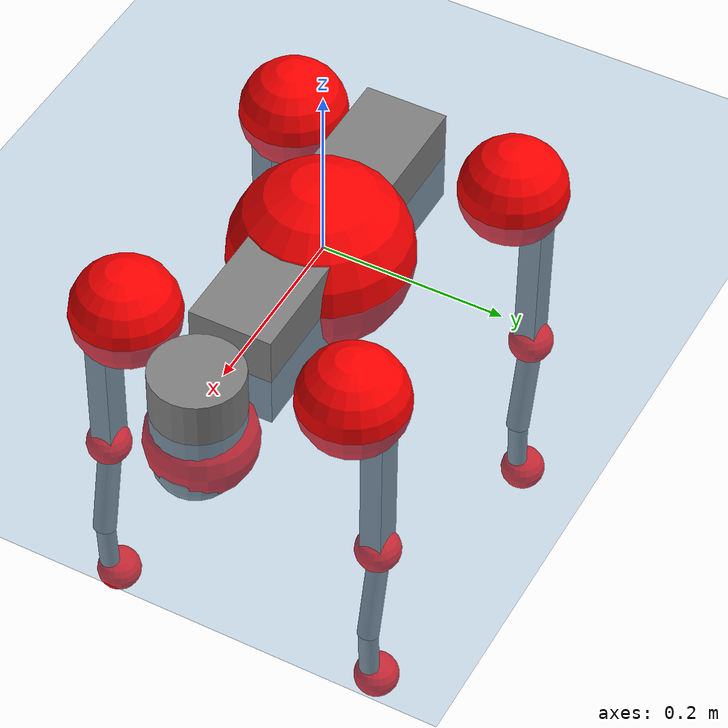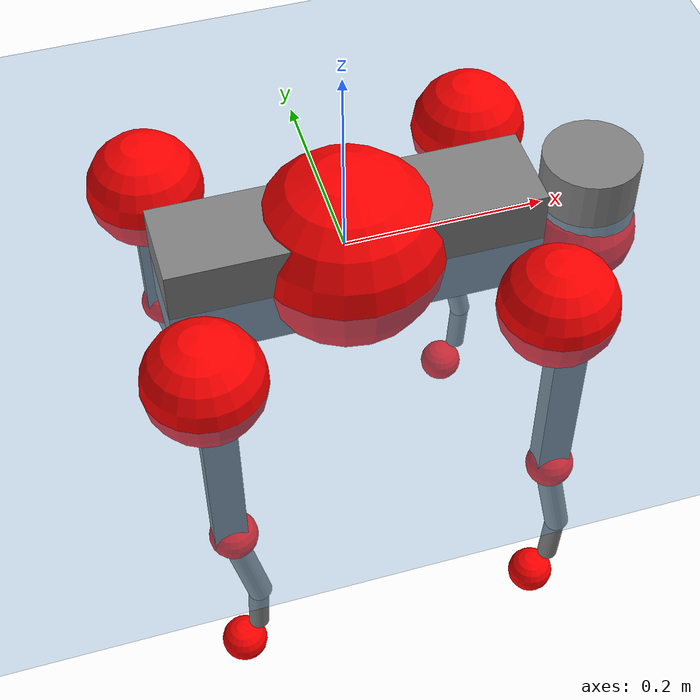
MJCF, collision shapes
<mujoco model="go2">
  <compiler angle="radian" assetdir="assets" balanceinertia="true" inertiafromgeom="false"/>

  <option timestep="0.005" density="1.2" viscosity="2e-05"/>

  <size nkey="1"/>

  <visual>
    <quality shadowsize="8192"/>
    <map shadowclip="0.5"/>
  </visual>

  <default>
    <default class="/">
      <geom contype="0" conaffinity="0" group="1" solref="-1000 -80"/>
      <site size="0.01 0.005 0.005" group="5"/>
      <general forcelimited="true" biastype="affine" gainprm="20" biasprm="0 -20 -0.5"/>
      <default class="go2">
        <joint armature="0.01" damping="0.01" frictionloss="0.2"/>
        <geom condim="1" margin="0.001"/>
        <default class="visual">
          <geom type="mesh" group="2"/>
        </default>
        <default class="collision">
          <geom group="3"/>
          <default class="foot">
            <geom size="0.022 0 0" condim="6" priority="1" friction="0.8 0.02 0.01" solimp="0.015 1 0.022"/>
          </default>
        </default>
        <default class="reward_collision_sphere">
          <geom group="5" rgba="1 0 0 1"/>
        </default>
      </default>
    </default>
  </default>

  <asset>
    <texture type="skybox" colorspace="auto" name="//unnamed_texture_0" builtin="gradient" rgb1="0.95 0.95 0.95" rgb2="0.95 0.95 0.95" width="100" height="600"/>
    <texture type="2d" colorspace="auto" name="texplane" builtin="checker" rgb1="0.345 0.575 0.748" rgb2="0.345 0.575 0.748" markrgb="1 1 1" width="512" height="512"/>
    <material name="MatPlane" class="/" texture="texplane" texuniform="true" texrepeat="2 2" specular="0.9"/>
    <material name="metal" class="/" rgba="0.9 0.95 0.95 1"/>
    <material name="black" class="/" rgba="0 0 0 1"/>
    <material name="white" class="/"/>
    <material name="gray" class="/" rgba="0.671705 0.692426 0.77427 1"/>
    <mesh name="base_0" class="/" file="base_0.obj"/>
    <mesh name="base_1" class="/" file="base_1.obj"/>
    <mesh name="base_2" class="/" file="base_2.obj"/>
    <mesh name="base_3" class="/" file="base_3.obj"/>
    <mesh name="base_4" class="/" file="base_4.obj"/>
    <mesh name="hip_0" class="/" file="hip_0.obj"/>
    <mesh name="hip_1" class="/" file="hip_1.obj"/>
    <mesh name="thigh_0" class="/" file="thigh_0.obj"/>
    <mesh name="thigh_1" class="/" file="thigh_1.obj"/>
    <mesh name="thigh_mirror_0" class="/" file="thigh_mirror_0.obj"/>
    <mesh name="thigh_mirror_1" class="/" file="thigh_mirror_1.obj"/>
    <mesh name="calf_0" class="/" file="calf_0.obj"/>
    <mesh name="calf_1" class="/" file="calf_1.obj"/>
    <mesh name="calf_mirror_0" class="/" file="calf_mirror_0.obj"/>
    <mesh name="calf_mirror_1" class="/" file="calf_mirror_1.obj"/>
    <mesh name="foot" class="/" file="foot.obj"/>
  </asset>

  <worldbody>
    <geom name="floor" class="/" size="100 100 0.125" type="plane" group="0" material="MatPlane"/>
    <light name="toplight_shadow" class="/" pos="0 0 5" dir="0.0990148 0.0990148 -0.990148" type="directional" ambient="0.04 0.04 0.04" diffuse="0.55 0.55 0.55" specular="0.12 0.12 0.12"/>
    <light name="toplight_fill" class="/" pos="0 0 5" dir="0.0990148 0.0990148 -0.990148" type="directional" castshadow="false" ambient="0.04 0.04 0.04" diffuse="0.3 0.3 0.3" specular="0.08 0.08 0.08"/>
    <body name="trunk" childclass="go2" pos="0.00246858 -0.000795923 -0.00258818" quat="1 -4.39833e-05 0.000156606 -1.61669e-05">
      <inertial pos="0.0212165 -0.000343427 -0.00470625" quat="-0.00783734 0.720657 -0.00461183 0.693232" mass="6.67432" diaginertia="0.0494214 0.155856 0.0207265"/>
      <joint name="//unnamed_joint_0" type="free" armature="0" damping="0" frictionloss="0"/>
      <geom name="//unnamed_geom_1" class="visual" material="black" mesh="base_0"/>
      <geom name="//unnamed_geom_2" class="visual" material="black" mesh="base_1"/>
      <geom name="//unnamed_geom_3" class="visual" material="black" mesh="base_2"/>
      <geom name="//unnamed_geom_4" class="visual" material="white" mesh="base_3"/>
      <geom name="//unnamed_geom_5" class="visual" material="gray" mesh="base_4"/>
      <geom name="trunk_1" class="collision" size="0.183235 0.0455409 0.0555258" type="box"/>
      <geom name="trunk_2" class="collision" size="0.0487068 0.0438361" pos="0.245266 0 0.00968336" type="cylinder"/>
      <geom name="trunk_3" class="collision" size="0.0457844" pos="0.25215 0 -0.0581002"/>
      <geom name="//unnamed_geom_9" class="reward_collision_sphere" size="0.0974136"/>
      <geom name="//unnamed_geom_10" class="reward_collision_sphere" size="0.0584482" pos="0.240963 0 -0.0435751"/>
      <site name="imu" pos="-0.0253876 0.0131552 0.0282827" size="0.00974136"/>
      <camera name="track" pos="0 -2.18698 0" quat="0.707107 0.707107 0 0" mode="trackcom"/>
      <camera name="ego_camera" pos="0.268502 0 0.0435751" quat="-0.5 -0.5 0.5 0.5"/>
      <body name="FL_hip" pos="0.165107 0.0493066 0.0021184" quat="0.999999 0.000485607 0.000246012 0.00107614">
        <inertial pos="-0.00143362 0.000201619 -0.0021527" quat="0.497335 0.498833 0.505702 0.498086" mass="0.607959" diaginertia="0.000402813 0.000941276 0.000412818"/>
        <joint name="FL_hip_joint" pos="0 0 0" axis="0.999957 0.00730119 -0.00574893" range="-1.05136 1.06813" armature="0.00983665" damping="0.00493159" frictionloss="0.219362"/>
        <geom name="//unnamed_geom_11" class="visual" material="metal" mesh="hip_0"/>
        <geom name="//unnamed_geom_12" class="visual" material="gray" mesh="hip_1"/>
        <geom name="//unnamed_geom_13" class="collision" size="0.0448103 0.0194827" pos="0 0.0874793 0" quat="0.707107 0.707107 0 0" type="cylinder"/>
        <geom name="//unnamed_geom_14" class="reward_collision_sphere" size="0.0584482" pos="0 0.0765444 0"/>
        <body name="FL_thigh" pos="0.000183208 0.105177 0.00250388" quat="1 -0.000146319 0.000120557 -7.26435e-05">
          <inertial pos="-0.0056674 -0.0234877 -0.0330777" quat="0.829931 0.0854021 -0.0199735 0.550928" mass="1.02289" diaginertia="0.00276121 0.00933539 0.00071734"/>
          <joint name="FL_thigh_joint" pos="0 0 0" axis="0.0048538 0.999986 0.00227036" range="-1.56207 3.49218" armature="0.00979885" damping="0.0184291" frictionloss="0.216332"/>
          <geom name="//unnamed_geom_15" class="visual" material="metal" mesh="thigh_0"/>
          <geom name="//unnamed_geom_16" class="visual" material="gray" mesh="thigh_1"/>
          <geom name="//unnamed_geom_17" class="collision" size="0.103746 0.0119332 0.0165603" pos="0 0 -0.103128" quat="0.707107 0 0.707107 0" type="box"/>
          <body name="FL_calf" pos="0.000418842 0.00101806 -0.207248" quat="1 -0.000416147 0.000436582 0.000271269">
            <inertial pos="0.00701597 0.00140995 -0.137269" quat="0.711805 0.00693875 -0.00674704 0.702311" mass="0.229527" diaginertia="0.000677964 0.00234211 4.44696e-05"/>
            <joint name="FL_calf_joint" pos="0 0 0" axis="-0.000693731 1 -0.000661932" range="-2.74463 -0.824789" armature="0.0087075" damping="0" frictionloss="0.181164"/>
            <geom name="//unnamed_geom_18" class="visual" material="gray" mesh="calf_0"/>
            <geom name="//unnamed_geom_19" class="visual" material="black" mesh="calf_1"/>
            <geom name="FL_calf0" class="collision" size="0.0116896 0.0584482" pos="0.00688466 0 -0.0581002" quat="0.994493 0 -0.104807 0" type="cylinder"/>
            <geom name="//unnamed_geom_21" class="collision" size="0.0107155 0.0316594" pos="0.0172116 0 -0.143314" quat="0.999688 0 0.0249974 0" type="cylinder"/>
            <geom name="//unnamed_geom_22" class="visual" pos="0 0 -0.206256" quat="1 0 0 0" material="black" mesh="foot"/>
            <geom name="FL_foot" class="foot" size="0.0238858" pos="-0.00172116 0 -0.206256"/>
            <geom name="//unnamed_geom_24" class="reward_collision_sphere" size="0.0243534"/>
            <geom name="//unnamed_geom_25" class="reward_collision_sphere" size="0.0243534" pos="-0.00172116 0 -0.206256"/>
            <site name="FL_foot" class="foot" pos="-0.00172116 0 -0.206256" size="0.00974136"/>
          </body>
        </body>
      </body>
      <body name="FR_hip" pos="0.16574 -0.0522426 -0.000445078" quat="0.999999 0.0009057 0.000896771 -0.000310432">
        <inertial pos="-0.00488289 0.000481478 -6.82727e-05" quat="0.497885 0.50568 0.500249 0.496134" mass="0.599597" diaginertia="0.000413193 0.000915293 0.000405967"/>
        <joint name="FR_hip_joint" pos="0 0 0" axis="0.999996 -0.00102402 0.00254681" stiffness="0.0100432" range="-1.01302 1.04289" armature="0.0111013" damping="0.00165016" frictionloss="0.169139"/>
        <geom name="//unnamed_geom_26" class="visual" pos="0 1.0903e-09 4.67653e-08" quat="4.63268e-05 1 0 0" material="metal" mesh="hip_0"/>
        <geom name="//unnamed_geom_27" class="visual" pos="0 1.76751e-09 -1.15668e-07" quat="4.63268e-05 1 0 0" material="gray" mesh="hip_1"/>
        <geom name="//unnamed_geom_28" class="collision" size="0.0448103 0.0194827" pos="0 -0.0874793 0" quat="0.707107 0.707107 0 0" type="cylinder"/>
        <geom name="//unnamed_geom_29" class="reward_collision_sphere" size="0.0584482" pos="0 -0.0765444 0"/>
        <body name="FR_thigh" pos="-0.000130581 -0.107057 -0.00156519" quat="1 -0.000232884 1.54464e-05 -0.000895032">
          <inertial pos="-0.00376195 0.027496 -0.0341846" quat="0.549699 -0.0256795 0.0813114 0.831" mass="1.07341" diaginertia="0.0026878 0.00856071 0.00072581"/>
          <joint name="FR_thigh_joint" pos="0 0 0" axis="0.0125121 -0.99989 0.00793903" range="-3.54336 1.51607" armature="0.00973966" damping="0.00163923" frictionloss="0.219306"/>
          <geom name="//unnamed_geom_30" class="visual" material="metal" mesh="thigh_mirror_0"/>
          <geom name="//unnamed_geom_31" class="visual" material="gray" mesh="thigh_mirror_1"/>
          <geom name="//unnamed_geom_32" class="collision" size="0.103746 0.0119332 0.0165603" pos="0 0 -0.103128" quat="0.707107 0 0.707107 0" type="box"/>
          <body name="FR_calf" pos="0.0012418 -0.000184826 -0.207045" quat="1 4.30614e-05 -0.000291164 3.75163e-05">
            <inertial pos="0.00743659 0.000439246 -0.13969" quat="0.705732 -0.00694506 -0.00440241 0.708431" mass="0.228733" diaginertia="0.000691777 0.00225761 4.47924e-05"/>
            <joint name="FR_calf_joint" pos="0 0 0" axis="0.00415427 -0.999976 0.00558734" range="0.837648 2.71261" armature="0.00977552" damping="0.0175541" frictionloss="0.218516"/>
            <geom name="//unnamed_geom_33" class="visual" material="gray" mesh="calf_mirror_0"/>
            <geom name="//unnamed_geom_34" class="visual" material="black" mesh="calf_mirror_1"/>
            <geom name="FR_calf0" class="collision" size="0.0126638 0.0584482" pos="0.00860582 0 -0.0581002" quat="0.995004 0 -0.0998334 0" type="cylinder"/>
            <geom name="//unnamed_geom_36" class="collision" size="0.0107155 0.0316594" pos="0.0172116 0 -0.143314" quat="0.999688 0 0.0249974 0" type="cylinder"/>
            <geom name="//unnamed_geom_37" class="visual" pos="0 0 -0.206256" quat="1 0 0 0" material="black" mesh="foot"/>
            <geom name="FR_foot" class="foot" size="0.0234647" pos="-0.00172116 0 -0.206256"/>
            <geom name="//unnamed_geom_39" class="reward_collision_sphere" size="0.0243534"/>
            <geom name="//unnamed_geom_40" class="reward_collision_sphere" size="0.0243534" pos="-0.00172116 0 -0.206256"/>
            <site name="FR_foot" class="foot" pos="-0.00172116 0 -0.206256" size="0.00974136"/>
          </body>
        </body>
      </body>
      <body name="RL_hip" pos="-0.16977 0.0547117 0.00195461" quat="0.999998 -0.00107619 0.00171013 -0.00016437">
        <inertial pos="0.00247665 0.000949439 0.00123433" quat="0.506181 0.497195 0.497368 0.499202" mass="0.642991" diaginertia="0.000414775 0.000934854 0.000394895"/>
        <joint name="RL_hip_joint" pos="0 0 0" axis="-0.999767 -0.00265202 0.0214111" stiffness="0.00333842" range="-1.08973 1.06679" armature="0.00976664" damping="0.011446" frictionloss="0.220083"/>
        <geom name="//unnamed_geom_41" class="visual" pos="9.38708e-10 0 1.84008e-07" quat="4.63268e-05 0 1 0" material="metal" mesh="hip_0"/>
        <geom name="//unnamed_geom_42" class="visual" pos="1.52176e-09 0 1.63189e-07" quat="4.63268e-05 0 1 0" material="gray" mesh="hip_1"/>
        <geom name="//unnamed_geom_43" class="collision" size="0.0448103 0.0194827" pos="0 0.0874793 0" quat="0.707107 0.707107 0 0" type="cylinder"/>
        <geom name="//unnamed_geom_44" class="reward_collision_sphere" size="0.0584482" pos="0 0.0765444 0"/>
        <body name="RL_thigh" pos="0.00230794 0.107203 0.00055939" quat="0.999999 -0.000935506 -0.000515295 0.000360568">
          <inertial pos="-0.00215451 -0.0259082 -0.033583" quat="0.83058 0.0795974 -0.0182249 0.550881" mass="1.07577" diaginertia="0.00290471 0.00915422 0.000774495"/>
          <joint name="RL_thigh_joint" pos="0 0 0" axis="-0.00159326 0.999992 0.00353358" stiffness="0.00404495" range="-0.549002 4.54098" armature="0.00926802" damping="0.02" frictionloss="0.169205"/>
          <geom name="//unnamed_geom_45" class="visual" material="metal" mesh="thigh_0"/>
          <geom name="//unnamed_geom_46" class="visual" material="gray" mesh="thigh_1"/>
          <geom name="//unnamed_geom_47" class="collision" size="0.103746 0.0119332 0.0165603" pos="0 0 -0.103128" quat="0.707107 0 0.707107 0" type="box"/>
          <body name="RL_calf" pos="0.00183642 0.00225416 -0.203297" quat="1 0.000304948 0.00015308 5.49138e-05">
            <inertial pos="0.00548898 -0.000635373 -0.135207" quat="0.711045 0.00199999 -0.00391884 0.703133" mass="0.223292" diaginertia="0.000701232 0.00225115 4.48286e-05"/>
            <joint name="RL_calf_joint" pos="0 0 0" axis="-0.000756105 0.999999 0.00140468" stiffness="0.00194074" range="-2.77463 -0.836106" armature="0.00869276" damping="0.0184804" frictionloss="0.20211"/>
            <geom name="//unnamed_geom_48" class="visual" material="gray" mesh="calf_0"/>
            <geom name="//unnamed_geom_49" class="visual" material="black" mesh="calf_1"/>
            <geom name="RL_calf0" class="collision" size="0.0126638 0.0584482" pos="0.00860582 0 -0.0581002" quat="0.995004 0 -0.0998334 0" type="cylinder"/>
            <geom name="//unnamed_geom_51" class="collision" size="0.0107155 0.0316594" pos="0.0172116 0 -0.143314" quat="0.999688 0 0.0249974 0" type="cylinder"/>
            <geom name="//unnamed_geom_52" class="visual" pos="0 0 -0.206256" quat="1 0 0 0" material="black" mesh="foot"/>
            <geom name="RL_foot" class="foot" size="0.021213" pos="-0.00172116 0 -0.206256"/>
            <geom name="//unnamed_geom_54" class="reward_collision_sphere" size="0.0243534"/>
            <geom name="//unnamed_geom_55" class="reward_collision_sphere" size="0.0243534" pos="-0.00172116 0 -0.206256"/>
            <site name="RL_foot" class="foot" pos="-0.00172116 0 -0.206256" size="0.00974136"/>
          </body>
        </body>
      </body>
      <body name="RR_hip" pos="-0.168184 -0.0478694 0.000508444" quat="1 -0.00047411 -0.000254686 -7.84376e-05">
        <inertial pos="0.00422056 -0.00235662 0.000251174" quat="0.496941 0.503392 0.493943 0.505635" mass="0.634629" diaginertia="0.000430788 0.000957639 0.000399672"/>
        <joint name="RR_hip_joint" pos="0 0 0" axis="-0.999949 -0.00823345 -0.00589091" range="-1.00913 1.05397" armature="0.00853106" damping="0" frictionloss="0.204989"/>
        <geom name="//unnamed_geom_56" class="visual" pos="-9.30645e-10 1.0903e-09 1.37243e-07" quat="2.14617e-09 4.63268e-05 4.63268e-05 -1" material="metal" mesh="hip_0"/>
        <geom name="//unnamed_geom_57" class="visual" pos="-1.5417e-09 1.76751e-09 2.78858e-07" quat="2.14617e-09 4.63268e-05 4.63268e-05 -1" material="gray" mesh="hip_1"/>
        <geom name="//unnamed_geom_58" class="collision" size="0.0448103 0.0194827" pos="0 -0.0874793 0" quat="0.707107 0.707107 0 0" type="cylinder"/>
        <geom name="//unnamed_geom_59" class="reward_collision_sphere" size="0.0584482" pos="0 -0.0765444 0"/>
        <body name="RR_thigh" pos="0.00161186 -0.106393 0.00114807" quat="1 0.000667047 0.000189083 -0.000461691">
          <inertial pos="-0.00317812 0.0223107 -0.031965" quat="0.551324 -0.0174379 0.0834567 0.829923" mass="1.00078" diaginertia="0.00263071 0.0089144 0.000738127"/>
          <joint name="RR_thigh_joint" pos="0 0 0" axis="0.0180058 -0.999827 -0.00457137" range="-4.50491 0.554284" armature="0.0106144" damping="0.00150344" frictionloss="0.170164"/>
          <geom name="//unnamed_geom_60" class="visual" material="metal" mesh="thigh_mirror_0"/>
          <geom name="//unnamed_geom_61" class="visual" material="gray" mesh="thigh_mirror_1"/>
          <geom name="//unnamed_geom_62" class="collision" size="0.103746 0.0119332 0.0165603" pos="0 0 -0.103128" quat="0.707107 0 0.707107 0" type="box"/>
          <body name="RR_calf" pos="0.00395632 0.000973212 -0.207982" quat="1 0.000339944 -0.000486373 0.000461082">
            <inertial pos="0.00175536 0.00134626 -0.135088" quat="0.702845 0.00808413 -0.00134523 0.711296" mass="0.221497" diaginertia="0.000745249 0.00235126 4.74512e-05"/>
            <joint name="RR_calf_joint" pos="0 0 0" axis="0.0053904 -0.999935 0.00999932" range="0.84893 2.64564" armature="0.00972285" damping="0.0194625" frictionloss="0.21931"/>
            <geom name="//unnamed_geom_63" class="visual" material="gray" mesh="calf_mirror_0"/>
            <geom name="//unnamed_geom_64" class="visual" material="black" mesh="calf_mirror_1"/>
            <geom name="RR_calf0" class="collision" size="0.0126638 0.0584482" pos="0.00860582 0 -0.0581002" quat="0.995004 0 -0.0998334 0" type="cylinder"/>
            <geom name="//unnamed_geom_66" class="collision" size="0.0107155 0.0316594" pos="0.0172116 0 -0.143314" quat="0.999688 0 0.0249974 0" type="cylinder"/>
            <geom name="//unnamed_geom_67" class="visual" pos="0 0 -0.206256" quat="1 0 0 0" material="black" mesh="foot"/>
            <geom name="RR_foot" class="foot" size="0.0196258" pos="-0.00172116 0 -0.206256"/>
            <geom name="//unnamed_geom_69" class="reward_collision_sphere" size="0.0243534"/>
            <geom name="//unnamed_geom_70" class="reward_collision_sphere" size="0.0243534" pos="-0.00172116 0 -0.206256"/>
            <site name="RR_foot" class="foot" pos="-0.00172116 0 -0.206256" size="0.00974136"/>
          </body>
        </body>
      </body>
    </body>
  </worldbody>

  <contact>
    <pair class="/" geom1="floor" geom2="FL_foot" name="//unnamed_contact_0"/>
    <pair class="/" geom1="floor" geom2="FR_foot" name="//unnamed_contact_1"/>
    <pair class="/" geom1="floor" geom2="RL_foot" name="//unnamed_contact_2"/>
    <pair class="/" geom1="floor" geom2="RR_foot" name="//unnamed_contact_3"/>
  </contact>

  <actuator>
    <general name="FL_hip" class="/" joint="FL_hip_joint" forcerange="-22.8518 22.8518" gainprm="19.5615" biasprm="0 -19.5615 -0.49162"/>
    <general name="FL_thigh" class="/" joint="FL_thigh_joint" forcerange="-21.3225 21.3225" gainprm="19.5615" biasprm="0 -19.5615 -0.49162"/>
    <general name="FL_calf" class="/" joint="FL_calf_joint" forcerange="-44.7458 44.7458" gainprm="19.5615" biasprm="0 -19.5615 -0.49162"/>
    <general name="FR_hip" class="/" joint="FR_hip_joint" forcerange="-20.1392 20.1392" gainprm="19.5615" biasprm="0 -19.5615 -0.49162"/>
    <general name="FR_thigh" class="/" joint="FR_thigh_joint" forcerange="-22.6201 22.6201" gainprm="19.5615" biasprm="0 -19.5615 -0.49162"/>
    <general name="FR_calf" class="/" joint="FR_calf_joint" forcerange="-43.5696 43.5696" gainprm="19.5615" biasprm="0 -19.5615 -0.49162"/>
    <general name="RL_hip" class="/" joint="RL_hip_joint" forcerange="-22.287 22.287" gainprm="19.5615" biasprm="0 -19.5615 -0.49162"/>
    <general name="RL_thigh" class="/" joint="RL_thigh_joint" forcerange="-22.4738 22.4738" gainprm="19.5615" biasprm="0 -19.5615 -0.49162"/>
    <general name="RL_calf" class="/" joint="RL_calf_joint" forcerange="-45.9281 45.9281" gainprm="19.5615" biasprm="0 -19.5615 -0.49162"/>
    <general name="RR_hip" class="/" joint="RR_hip_joint" forcerange="-24.23 24.23" gainprm="19.5615" biasprm="0 -19.5615 -0.49162"/>
    <general name="RR_thigh" class="/" joint="RR_thigh_joint" forcerange="-20.8206 20.8206" gainprm="19.5615" biasprm="0 -19.5615 -0.49162"/>
    <general name="RR_calf" class="/" joint="RR_calf_joint" forcerange="-41.3748 41.3748" gainprm="19.5615" biasprm="0 -19.5615 -0.49162"/>
  </actuator>

  <sensor>
    <gyro site="imu" name="imu_angular_velocity"/>
    <velocimeter site="imu" name="imu_linear_velocity"/>
    <framelinvel objtype="site" objname="FL_foot" name="FL_foot_global_linear_velocity"/>
    <framelinvel objtype="site" objname="FR_foot" name="FR_foot_global_linear_velocity"/>
    <framelinvel objtype="site" objname="RL_foot" name="RL_foot_global_linear_velocity"/>
    <framelinvel objtype="site" objname="RR_foot" name="RR_foot_global_linear_velocity"/>
  </sensor>

  <keyframe>
    <key name="home" qpos="0 0 0.325 1 0 0 0 0.1 0.8 -1.5 -0.1 -0.8 1.5 -0.1 0.8 -1.5 0.1 -0.8 1.5"/>
  </keyframe>
</mujoco>
